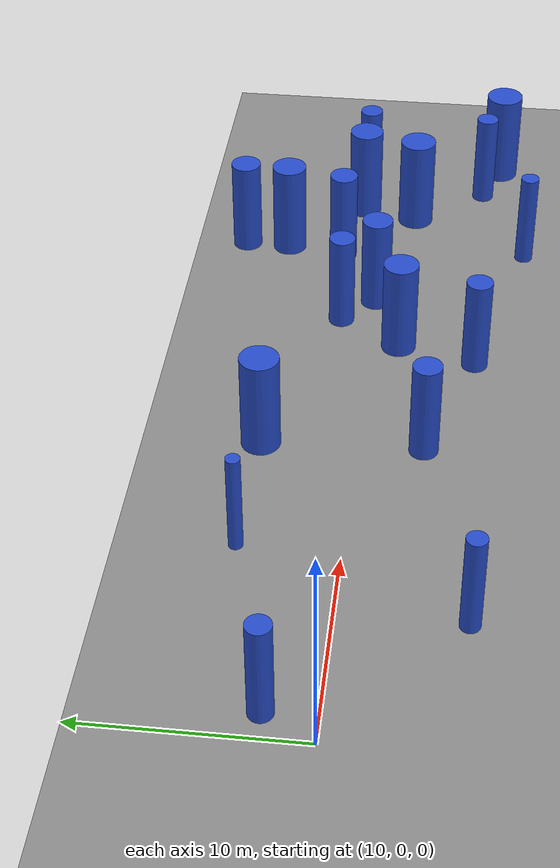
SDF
<sdf version="1.7">
 <world name="forest_randomization_v1">
  <gravity>0 0 -9.8</gravity>
  <light name="sun" type="directional">
   <pose>30 0 20 0 -0 0</pose>
   <diffuse>0.8 0.8 0.8 1</diffuse>
   <specular>0.2 0.2 0.2 1</specular>
   <direction>-0.5 0.5 -1</direction>
   <attenuation><range>10</range></attenuation>
   <spot><inner_angle>0</inner_angle><outer_angle>0</outer_angle><falloff>0</falloff></spot>
  </light>
  <model name="forest_ground_60x20">
   <static>1</static>
   <pose>30 0 0 0 -0 0</pose>
   <link name="link">
    <collision name="collision">
     <geometry><plane><normal>0 0 1</normal><size>60 20</size></plane></geometry>
    </collision>
    <visual name="visual">
     <cast_shadows>0</cast_shadows>
     <geometry><plane><normal>0 0 1</normal><size>60 20</size></plane></geometry>
     <material><ambient>0.45 0.45 0.45 1</ambient><diffuse>0.55 0.55 0.55 1</diffuse></material>
    </visual>
   </link>
  </model>
  <physics name="default_physics" type="ode">
   <max_step_size>0.001</max_step_size>
   <real_time_update_rate>1000</real_time_update_rate>
   <real_time_factor>1</real_time_factor>
  </physics>
  <scene>
   <ambient>0.4 0.4 0.4 1</ambient>
   <background>0.7 0.7 0.7 1</background>
   <shadows>1</shadows>
   <grid>1</grid>
  </scene>
  <magnetic_field>6e-06 2.3e-05 -4.2e-05</magnetic_field>
  <atmosphere type="adiabatic"/>
  <spherical_coordinates>
   <surface_model>EARTH_WGS84</surface_model>
   <latitude_deg>0</latitude_deg>
   <longitude_deg>0</longitude_deg>
   <elevation>0</elevation>
   <heading_deg>0</heading_deg>
  </spherical_coordinates>
  <model name="sparse_0">
   <static>0</static>
   <link name="link">
    <inertial>
     <mass>2</mass>
     <inertia><ixx>4.3211</ixx><ixy>0</ixy><ixz>0</ixz><iyy>4.3211</iyy><iyz>0</iyz><izz>0.308875</izz></inertia>
    </inertial>
    <collision name="collision">
     <geometry><cylinder><length>5</length><radius>0.555765</radius></cylinder></geometry>
     <surface><contact><collide_without_contact>1</collide_without_contact></contact></surface>
    </collision>
    <visual name="visual">
     <geometry><cylinder><length>5</length><radius>0.555765</radius></cylinder></geometry>
     <material>
      <script><uri>file://media/materials/scripts/gazebo.material</uri><name>Gazebo/Blue</name></script>
     </material>
    </visual>
    <gravity>0</gravity>
   </link>
   <pose>11.3247 2.30413 2.5 0 -0 0</pose>
  </model>
  <model name="sparse_1">
   <static>0</static>
   <link name="link">
    <inertial>
     <mass>2</mass>
     <inertia><ixx>4.22249</ixx><ixy>0</ixy><ixz>0</ixz><iyy>4.22249</iyy><iyz>0</iyz><izz>0.111642</izz></inertia>
    </inertial>
    <collision name="collision">
     <geometry><cylinder><length>5</length><radius>0.334128</radius></cylinder></geometry>
     <surface><contact><collide_without_contact>1</collide_without_contact></contact></surface>
    </collision>
    <visual name="visual">
     <geometry><cylinder><length>5</length><radius>0.334128</radius></cylinder></geometry>
     <material>
      <script><uri>file://media/materials/scripts/gazebo.material</uri><name>Gazebo/Blue</name></script>
     </material>
    </visual>
    <gravity>0</gravity>
   </link>
   <pose>20.4384 4.61656 2.5 0 -0 0</pose>
  </model>
  <model name="sparse_2">
   <static>0</static>
   <link name="link">
    <inertial>
     <mass>2</mass>
     <inertia><ixx>4.275</ixx><ixy>0</ixy><ixz>0</ixz><iyy>4.275</iyy><iyz>0</iyz><izz>0.216671</izz></inertia>
    </inertial>
    <collision name="collision">
     <geometry><cylinder><length>5</length><radius>0.465479</radius></cylinder></geometry>
     <surface><contact><collide_without_contact>1</collide_without_contact></contact></surface>
    </collision>
    <visual name="visual">
     <geometry><cylinder><length>5</length><radius>0.465479</radius></cylinder></geometry>
     <material>
      <script><uri>file://media/materials/scripts/gazebo.material</uri><name>Gazebo/Blue</name></script>
     </material>
    </visual>
    <gravity>0</gravity>
   </link>
   <pose>16.8015 -5.67926 2.5 0 -0 0</pose>
  </model>
  <model name="medium_3">
   <static>0</static>
   <link name="link">
    <inertial>
     <mass>2</mass>
     <inertia><ixx>4.40448</ixx><ixy>0</ixy><ixz>0</ixz><iyy>4.40448</iyy><iyz>0</iyz><izz>0.475631</izz></inertia>
    </inertial>
    <collision name="collision">
     <geometry><cylinder><length>5</length><radius>0.68966</radius></cylinder></geometry>
     <surface><contact><collide_without_contact>1</collide_without_contact></contact></surface>
    </collision>
    <visual name="visual">
     <geometry><cylinder><length>5</length><radius>0.68966</radius></cylinder></geometry>
     <material>
      <script><uri>file://media/materials/scripts/gazebo.material</uri><name>Gazebo/Blue</name></script>
     </material>
    </visual>
    <gravity>0</gravity>
   </link>
   <pose>27.5159 -3.1374 2.5 0 -0 0</pose>
  </model>
  <model name="medium_4">
   <static>0</static>
   <link name="link">
    <inertial>
     <mass>2</mass>
     <inertia><ixx>4.37455</ixx><ixy>0</ixy><ixz>0</ixz><iyy>4.37455</iyy><iyz>0</iyz><izz>0.415767</izz></inertia>
    </inertial>
    <collision name="collision">
     <geometry><cylinder><length>5</length><radius>0.6448</radius></cylinder></geometry>
     <surface><contact><collide_without_contact>1</collide_without_contact></contact></surface>
    </collision>
    <visual name="visual">
     <geometry><cylinder><length>5</length><radius>0.6448</radius></cylinder></geometry>
     <material>
      <script><uri>file://media/materials/scripts/gazebo.material</uri><name>Gazebo/Blue</name></script>
     </material>
    </visual>
    <gravity>0</gravity>
   </link>
   <pose>34.1975 -5.2569 2.5 0 -0 0</pose>
  </model>
  <model name="medium_5">
   <static>0</static>
   <link name="link">
    <inertial>
     <mass>2</mass>
     <inertia><ixx>4.60287</ixx><ixy>0</ixy><ixz>0</ixz><iyy>4.60287</iyy><iyz>0</iyz><izz>0.872405</izz></inertia>
    </inertial>
    <collision name="collision">
     <geometry><cylinder><length>5</length><radius>0.934026</radius></cylinder></geometry>
     <surface><contact><collide_without_contact>1</collide_without_contact></contact></surface>
    </collision>
    <visual name="visual">
     <geometry><cylinder><length>5</length><radius>0.934026</radius></cylinder></geometry>
     <material>
      <script><uri>file://media/materials/scripts/gazebo.material</uri><name>Gazebo/Blue</name></script>
     </material>
    </visual>
    <gravity>0</gravity>
   </link>
   <pose>27.2735 4.42841 2.5 0 -0 0</pose>
  </model>
  <model name="medium_6">
   <static>0</static>
   <link name="link">
    <inertial>
     <mass>2</mass>
     <inertia><ixx>4.45904</ixx><ixy>0</ixy><ixz>0</ixz><iyy>4.45904</iyy><iyz>0</iyz><izz>0.584737</izz></inertia>
    </inertial>
    <collision name="collision">
     <geometry><cylinder><length>5</length><radius>0.764681</radius></cylinder></geometry>
     <surface><contact><collide_without_contact>1</collide_without_contact></contact></surface>
    </collision>
    <visual name="visual">
     <geometry><cylinder><length>5</length><radius>0.764681</radius></cylinder></geometry>
     <material>
      <script><uri>file://media/materials/scripts/gazebo.material</uri><name>Gazebo/Blue</name></script>
     </material>
    </visual>
    <gravity>0</gravity>
   </link>
   <pose>38.9786 0.001082 2.5 0 -0 0</pose>
  </model>
  <model name="medium_7">
   <static>0</static>
   <link name="link">
    <inertial>
     <mass>2</mass>
     <inertia><ixx>4.37338</ixx><ixy>0</ixy><ixz>0</ixz><iyy>4.37338</iyy><iyz>0</iyz><izz>0.41342</izz></inertia>
    </inertial>
    <collision name="collision">
     <geometry><cylinder><length>5</length><radius>0.642978</radius></cylinder></geometry>
     <surface><contact><collide_without_contact>1</collide_without_contact></contact></surface>
    </collision>
    <visual name="visual">
     <geometry><cylinder><length>5</length><radius>0.642978</radius></cylinder></geometry>
     <material>
      <script><uri>file://media/materials/scripts/gazebo.material</uri><name>Gazebo/Blue</name></script>
     </material>
    </visual>
    <gravity>0</gravity>
   </link>
   <pose>37.2047 1.61306 2.5 0 -0 0</pose>
  </model>
  <model name="medium_8">
   <static>0</static>
   <link name="link">
    <inertial>
     <mass>2</mass>
     <inertia><ixx>4.53688</ixx><ixy>0</ixy><ixz>0</ixz><iyy>4.53688</iyy><iyz>0</iyz><izz>0.74042</izz></inertia>
    </inertial>
    <collision name="collision">
     <geometry><cylinder><length>5</length><radius>0.860476</radius></cylinder></geometry>
     <surface><contact><collide_without_contact>1</collide_without_contact></contact></surface>
    </collision>
    <visual name="visual">
     <geometry><cylinder><length>5</length><radius>0.860476</radius></cylinder></geometry>
     <material>
      <script><uri>file://media/materials/scripts/gazebo.material</uri><name>Gazebo/Blue</name></script>
     </material>
    </visual>
    <gravity>0</gravity>
   </link>
   <pose>35.2706 -1.43565 2.5 0 -0 0</pose>
  </model>
  <model name="dense_9">
   <static>0</static>
   <link name="link">
    <inertial>
     <mass>2</mass>
     <inertia><ixx>4.27301</ixx><ixy>0</ixy><ixz>0</ixz><iyy>4.27301</iyy><iyz>0</iyz><izz>0.212677</izz></inertia>
    </inertial>
    <collision name="collision">
     <geometry><cylinder><length>5</length><radius>0.461169</radius></cylinder></geometry>
     <surface><contact><collide_without_contact>1</collide_without_contact></contact></surface>
    </collision>
    <visual name="visual">
     <geometry><cylinder><length>5</length><radius>0.461169</radius></cylinder></geometry>
     <material>
      <script><uri>file://media/materials/scripts/gazebo.material</uri><name>Gazebo/Blue</name></script>
     </material>
    </visual>
    <gravity>0</gravity>
   </link>
   <pose>43.7567 -7.55944 2.5 0 -0 0</pose>
  </model>
  <model name="dense_10">
   <static>0</static>
   <link name="link">
    <inertial>
     <mass>2</mass>
     <inertia><ixx>4.59744</ixx><ixy>0</ixy><ixz>0</ixz><iyy>4.59744</iyy><iyz>0</iyz><izz>0.861556</izz></inertia>
    </inertial>
    <collision name="collision">
     <geometry><cylinder><length>5</length><radius>0.9282</radius></cylinder></geometry>
     <surface><contact><collide_without_contact>1</collide_without_contact></contact></surface>
    </collision>
    <visual name="visual">
     <geometry><cylinder><length>5</length><radius>0.9282</radius></cylinder></geometry>
     <material>
      <script><uri>file://media/materials/scripts/gazebo.material</uri><name>Gazebo/Blue</name></script>
     </material>
    </visual>
    <gravity>0</gravity>
   </link>
   <pose>46.8416 -1.5724 2.5 0 -0 0</pose>
  </model>
  <model name="dense_11">
   <static>0</static>
   <link name="link">
    <inertial>
     <mass>2</mass>
     <inertia><ixx>4.63091</ixx><ixy>0</ixy><ixz>0</ixz><iyy>4.63091</iyy><iyz>0</iyz><izz>0.928487</izz></inertia>
    </inertial>
    <collision name="collision">
     <geometry><cylinder><length>5</length><radius>0.96358</radius></cylinder></geometry>
     <surface><contact><collide_without_contact>1</collide_without_contact></contact></surface>
    </collision>
    <visual name="visual">
     <geometry><cylinder><length>5</length><radius>0.96358</radius></cylinder></geometry>
     <material>
      <script><uri>file://media/materials/scripts/gazebo.material</uri><name>Gazebo/Blue</name></script>
     </material>
    </visual>
    <gravity>0</gravity>
   </link>
   <pose>52.2507 -6.09721 2.5 0 -0 0</pose>
  </model>
  <model name="dense_12">
   <static>0</static>
   <link name="link">
    <inertial>
     <mass>2</mass>
     <inertia><ixx>4.55077</ixx><ixy>0</ixy><ixz>0</ixz><iyy>4.55077</iyy><iyz>0</iyz><izz>0.768209</izz></inertia>
    </inertial>
    <collision name="collision">
     <geometry><cylinder><length>5</length><radius>0.876475</radius></cylinder></geometry>
     <surface><contact><collide_without_contact>1</collide_without_contact></contact></surface>
    </collision>
    <visual name="visual">
     <geometry><cylinder><length>5</length><radius>0.876475</radius></cylinder></geometry>
     <material>
      <script><uri>file://media/materials/scripts/gazebo.material</uri><name>Gazebo/Blue</name></script>
     </material>
    </visual>
    <gravity>0</gravity>
   </link>
   <pose>43.5557 5.01802 2.5 0 -0 0</pose>
  </model>
  <model name="dense_13">
   <static>0</static>
   <link name="link">
    <inertial>
     <mass>2</mass>
     <inertia><ixx>4.32797</ixx><ixy>0</ixy><ixz>0</ixz><iyy>4.32797</iyy><iyz>0</iyz><izz>0.322602</izz></inertia>
    </inertial>
    <collision name="collision">
     <geometry><cylinder><length>5</length><radius>0.56798</radius></cylinder></geometry>
     <surface><contact><collide_without_contact>1</collide_without_contact></contact></surface>
    </collision>
    <visual name="visual">
     <geometry><cylinder><length>5</length><radius>0.56798</radius></cylinder></geometry>
     <material>
      <script><uri>file://media/materials/scripts/gazebo.material</uri><name>Gazebo/Blue</name></script>
     </material>
    </visual>
    <gravity>0</gravity>
   </link>
   <pose>49.6325 -5.21276 2.5 0 -0 0</pose>
  </model>
  <model name="dense_14">
   <static>0</static>
   <link name="link">
    <inertial>
     <mass>2</mass>
     <inertia><ixx>4.33887</ixx><ixy>0</ixy><ixz>0</ixz><iyy>4.33887</iyy><iyz>0</iyz><izz>0.344405</izz></inertia>
    </inertial>
    <collision name="collision">
     <geometry><cylinder><length>5</length><radius>0.58686</radius></cylinder></geometry>
     <surface><contact><collide_without_contact>1</collide_without_contact></contact></surface>
    </collision>
    <visual name="visual">
     <geometry><cylinder><length>5</length><radius>0.58686</radius></cylinder></geometry>
     <material>
      <script><uri>file://media/materials/scripts/gazebo.material</uri><name>Gazebo/Blue</name></script>
     </material>
    </visual>
    <gravity>0</gravity>
   </link>
   <pose>49.8476 1.17872 2.5 0 -0 0</pose>
  </model>
  <model name="dense_15">
   <static>0</static>
   <link name="link">
    <inertial>
     <mass>2</mass>
     <inertia><ixx>4.45559</ixx><ixy>0</ixy><ixz>0</ixz><iyy>4.45559</iyy><iyz>0</iyz><izz>0.577848</izz></inertia>
    </inertial>
    <collision name="collision">
     <geometry><cylinder><length>5</length><radius>0.760163</radius></cylinder></geometry>
     <surface><contact><collide_without_contact>1</collide_without_contact></contact></surface>
    </collision>
    <visual name="visual">
     <geometry><cylinder><length>5</length><radius>0.760163</radius></cylinder></geometry>
     <material>
      <script><uri>file://media/materials/scripts/gazebo.material</uri><name>Gazebo/Blue</name></script>
     </material>
    </visual>
    <gravity>0</gravity>
   </link>
   <pose>43.6009 7.31839 2.5 0 -0 0</pose>
  </model>
  <model name="dense_16">
   <static>0</static>
   <link name="link">
    <inertial>
     <mass>2</mass>
     <inertia><ixx>4.54948</ixx><ixy>0</ixy><ixz>0</ixz><iyy>4.54948</iyy><iyz>0</iyz><izz>0.765625</izz></inertia>
    </inertial>
    <collision name="collision">
     <geometry><cylinder><length>5</length><radius>0.875</radius></cylinder></geometry>
     <surface><contact><collide_without_contact>1</collide_without_contact></contact></surface>
    </collision>
    <visual name="visual">
     <geometry><cylinder><length>5</length><radius>0.875</radius></cylinder></geometry>
     <material>
      <script><uri>file://media/materials/scripts/gazebo.material</uri><name>Gazebo/Blue</name></script>
     </material>
    </visual>
    <gravity>0</gravity>
   </link>
   <pose>47.6101 1.26476 2.5 0 -0 0</pose>
  </model>
  <model name="dense_17">
   <static>0</static>
   <link name="link">
    <inertial>
     <mass>2</mass>
     <inertia><ixx>4.42034</ixx><ixy>0</ixy><ixz>0</ixz><iyy>4.42034</iyy><iyz>0</iyz><izz>0.507338</izz></inertia>
    </inertial>
    <collision name="collision">
     <geometry><cylinder><length>5</length><radius>0.712277</radius></cylinder></geometry>
     <surface><contact><collide_without_contact>1</collide_without_contact></contact></surface>
    </collision>
    <visual name="visual">
     <geometry><cylinder><length>5</length><radius>0.712277</radius></cylinder></geometry>
     <material>
      <script><uri>file://media/materials/scripts/gazebo.material</uri><name>Gazebo/Blue</name></script>
     </material>
    </visual>
    <gravity>0</gravity>
   </link>
   <pose>43.0021 2.08038 2.5 0 -0 0</pose>
  </model>
 </world>
</sdf>
